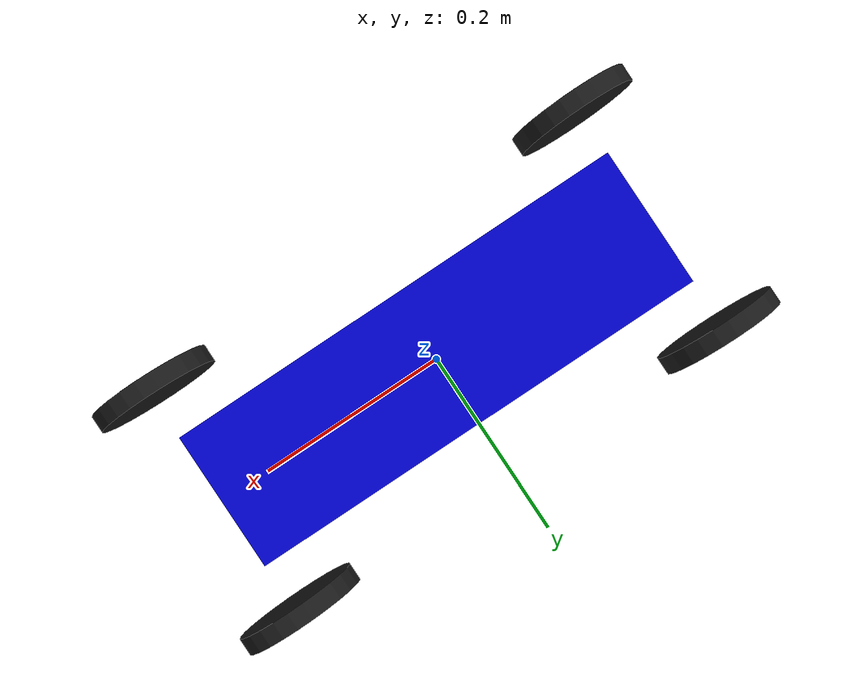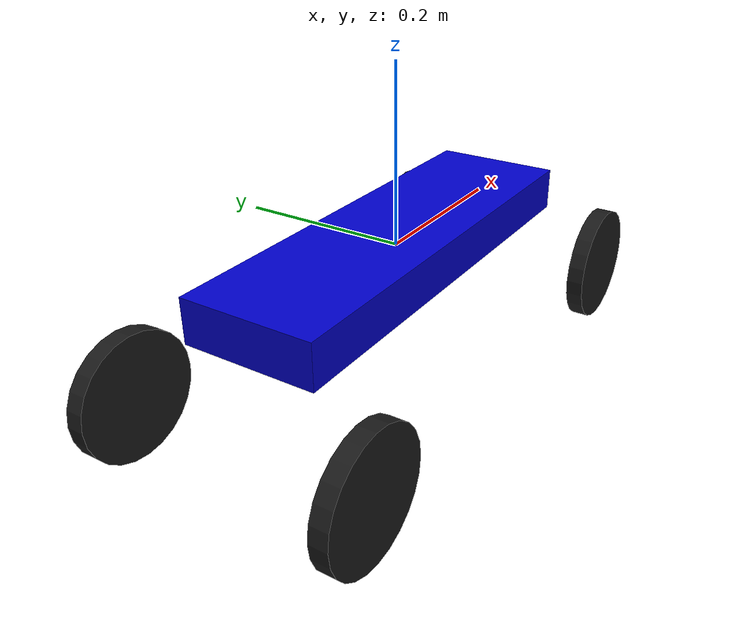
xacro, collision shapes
<?xml version="1.0"?>
<robot xmlns:xacro="http://www.ros.org/wiki/xacro" name="car_robot">
	<xacro:arg name="suspend" default="true" />

	<!-- Vehicle parameters -->
	<xacro:property name="chassis_length" value="0.5" />
	<xacro:property name="chassis_width" value="0.15" />
	<xacro:property name="chassis_height" value="0.05" />
	<xacro:property name="chassis_mass" value="8.0" />

	<xacro:property name="wheel_radius" value="0.07" />
	<xacro:property name="wheel_width" value="0.02" />
	<xacro:property name="wheel_mass" value="0.5" />

	<!-- Distance between front and rear axles -->
	<xacro:property name="wheelbase" value="0.535" />

	<!-- Distance between left and right wheels -->
	<xacro:property name="track_width" value="0.281" />

	<xacro:property name="suspension_travel" value="0.1" />
	<xacro:property name="suspension_damping" value="1000.0" />
	<xacro:property name="suspension_stiffness" value="100.0" />

	<xacro:property name="max_steering_angle" value="1.5" />

	<!-- Materials -->
	<material name="blue">
		<color rgba="0 0 0.8 1"/>
	</material>

	<material name="black">
		<color rgba="0.1 0.1 0.1 1"/>
	</material>

	<!-- Wheel macro -->
	<xacro:macro name="wheel" params="prefix">
		<link name="${prefix}_wheel">
			<visual>
				<geometry>
					<mesh filename="./wheels/wheel_and_tire.dae" scale="2.0 2.0 2.0" />
				</geometry>
				<material name="black"/>
				<origin xyz="0 0 0" rpy="1.5708 0 0"/>
			</visual>
			<collision>
				<geometry>
					<cylinder radius="${wheel_radius}" length="${wheel_width}"/>
				</geometry>
				<origin xyz="0 0 0" rpy="1.5708 0 0"/>
			</collision>
			<inertial>
				<mass value="${wheel_mass}"/>
				<inertia
					ixx="${wheel_mass * (3*wheel_radius*wheel_radius + wheel_width*wheel_width) / 12}"
					iyy="${wheel_mass * wheel_radius*wheel_radius / 2}"
					izz="${wheel_mass * (3*wheel_radius*wheel_radius + wheel_width*wheel_width) / 12}"
					ixy="0" ixz="0" iyz="0"
				/>
			</inertial>
		</link>
	</xacro:macro>

	<!-- Suspension link macro -->
	<xacro:macro name="suspension_link" params="prefix">
		<link name="${prefix}_suspension_link">
			<inertial>
				<mass value="0.1"/>
				<inertia ixx="0.0001" ixy="0" ixz="0" iyy="0.0001" iyz="0" izz="0.0001"/>
			</inertial>
		</link>
	</xacro:macro>

	<!-- Steering link macro (for front wheels) -->
	<xacro:macro name="steering_link" params="prefix">
		<link name="${prefix}_steering_link">
			<inertial>
				<mass value="0.1"/>
				<inertia ixx="0.0001" ixy="0" ixz="0" iyy="0.0001" iyz="0" izz="0.0001"/>
			</inertial>
		</link>
	</xacro:macro>

	<!-- Front wheel assembly macro (suspension + steering + wheel) -->
	<xacro:macro name="front_wheel_assembly" params="prefix x_pos y_pos">
		<xacro:if value="$(arg suspend)">
			<!-- Suspension -->
			<xacro:suspension_link prefix="${prefix}" />
			<joint name="${prefix}_suspension" type="prismatic">
				<parent link="base_link"/>
				<child link="${prefix}_suspension_link"/>
				<axis xyz="0 0 1"/>
				<origin xyz="${x_pos} ${y_pos} ${-chassis_height/2}" rpy="0 0 0"/>
				<limit lower="${-suspension_travel}" upper="${suspension_travel}" effort="100" velocity="10"/>
			</joint>

			<!-- Steering -->
			<xacro:steering_link prefix="${prefix}" />
			<joint name="${prefix}_steering_joint" type="revolute">
				<parent link="${prefix}_suspension_link"/>
				<child link="${prefix}_steering_link"/>
				<axis xyz="0 0 1"/>
				<origin xyz="0 0 0" rpy="0 0 0"/>
				<limit lower="${-max_steering_angle}" upper="${max_steering_angle}" effort="100" velocity="10"/>
			</joint>

			<!-- Wheel (with suspension) -->
			<xacro:wheel prefix="${prefix}" />
			<joint name="${prefix}_wheel_joint" type="continuous">
				<parent link="${prefix}_steering_link"/>
				<child link="${prefix}_wheel"/>
				<axis xyz="0 1 0"/>
				<origin xyz="0 0 ${-wheel_radius + chassis_height - 0.05}" rpy="0 0 0"/>
			</joint>
		</xacro:if>

		<xacro:unless value="$(arg suspend)">
			<!-- Steering (direct mount, no suspension) -->
			<xacro:steering_link prefix="${prefix}" />
			<joint name="${prefix}_steering_joint" type="revolute">
				<parent link="base_link"/>
				<child link="${prefix}_steering_link"/>
				<axis xyz="0 0 1"/>
				<origin xyz="${x_pos} ${y_pos} ${-chassis_height/2}" rpy="0 0 0"/>
				<limit lower="${-max_steering_angle}" upper="${max_steering_angle}" effort="100" velocity="10"/>
			</joint>

			<!-- Wheel (no suspension) -->
			<xacro:wheel prefix="${prefix}" />
			<joint name="${prefix}_wheel_joint" type="continuous">
				<parent link="${prefix}_steering_link"/>
				<child link="${prefix}_wheel"/>
				<axis xyz="0 1 0"/>
				<origin xyz="0 0 ${-wheel_radius + chassis_height - 0.05}" rpy="0 0 0"/>
			</joint>
		</xacro:unless>
	</xacro:macro>

	<!-- Rear wheel assembly macro (suspension + wheel, no steering) -->
	<xacro:macro name="rear_wheel_assembly" params="prefix x_pos y_pos">
		<xacro:if value="$(arg suspend)">
			<!-- Suspension -->
			<xacro:suspension_link prefix="${prefix}" />
			<joint name="${prefix}_suspension" type="prismatic">
				<parent link="base_link"/>
				<child link="${prefix}_suspension_link"/>
				<axis xyz="0 0 1"/>
				<origin xyz="${x_pos} ${y_pos} ${-(chassis_height/2)}" rpy="0 0 0"/>
				<limit lower="${-suspension_travel}" upper="${suspension_travel}" effort="100" velocity="10"/>
			</joint>

			<!-- Wheel (with suspension) -->
			<xacro:wheel prefix="${prefix}" />
			<joint name="${prefix}_wheel_joint" type="continuous">
				<parent link="${prefix}_suspension_link"/>
				<child link="${prefix}_wheel"/>
				<axis xyz="0 1 0"/>
				<origin xyz="0 0 ${-wheel_radius + chassis_height - 0.05}" rpy="0 0 0"/>
			</joint>
		</xacro:if>

		<xacro:unless value="$(arg suspend)">
			<!-- Wheel (direct mount, no suspension) -->
			<xacro:wheel prefix="${prefix}" />
			<joint name="${prefix}_wheel_joint" type="continuous">
				<parent link="base_link"/>
				<child link="${prefix}_wheel"/>
				<axis xyz="0 1 0"/>
				<origin xyz="${x_pos} ${y_pos} ${-wheel_radius - chassis_height/2}" rpy="0 0 0"/>
			</joint>
		</xacro:unless>
	</xacro:macro>

	<!-- Main chassis -->
	<link name="base_link">
		<visual>
			<geometry>
				<box size="${chassis_length} ${chassis_width} ${chassis_height}"/>
			</geometry>
			<material name="blue"/>
			<origin xyz="0 0 0" rpy="0 0 0"/>
		</visual>
		<collision>
			<geometry>
				<box size="${chassis_length} ${chassis_width} ${chassis_height}"/>
			</geometry>
			<origin xyz="0 0 0" rpy="0 0 0"/>
		</collision>
		<inertial>
			<mass value="${chassis_mass}"/>
			<inertia ixx="${chassis_mass * (chassis_width*chassis_width + chassis_height*chassis_height) / 12}"
							 iyy="${chassis_mass * (chassis_length*chassis_length + chassis_height*chassis_height) / 12}"
							 izz="${chassis_mass * (chassis_length*chassis_length + chassis_width*chassis_width) / 12}"
							 ixy="0" ixz="0" iyz="0"/>
		</inertial>
	</link>

	<!-- Generate all four wheels -->
	<xacro:front_wheel_assembly prefix="front_left"	x_pos="${wheelbase/2}"	y_pos="${track_width/2}" />
	<xacro:front_wheel_assembly prefix="front_right" x_pos="${wheelbase/2}"	y_pos="${-track_width/2}" />
	<xacro:rear_wheel_assembly	prefix="rear_left"	 x_pos="${-wheelbase/2}" y_pos="${track_width/2}" />
	<xacro:rear_wheel_assembly	prefix="rear_right"	x_pos="${-wheelbase/2}" y_pos="${-track_width/2}" />

</robot>
